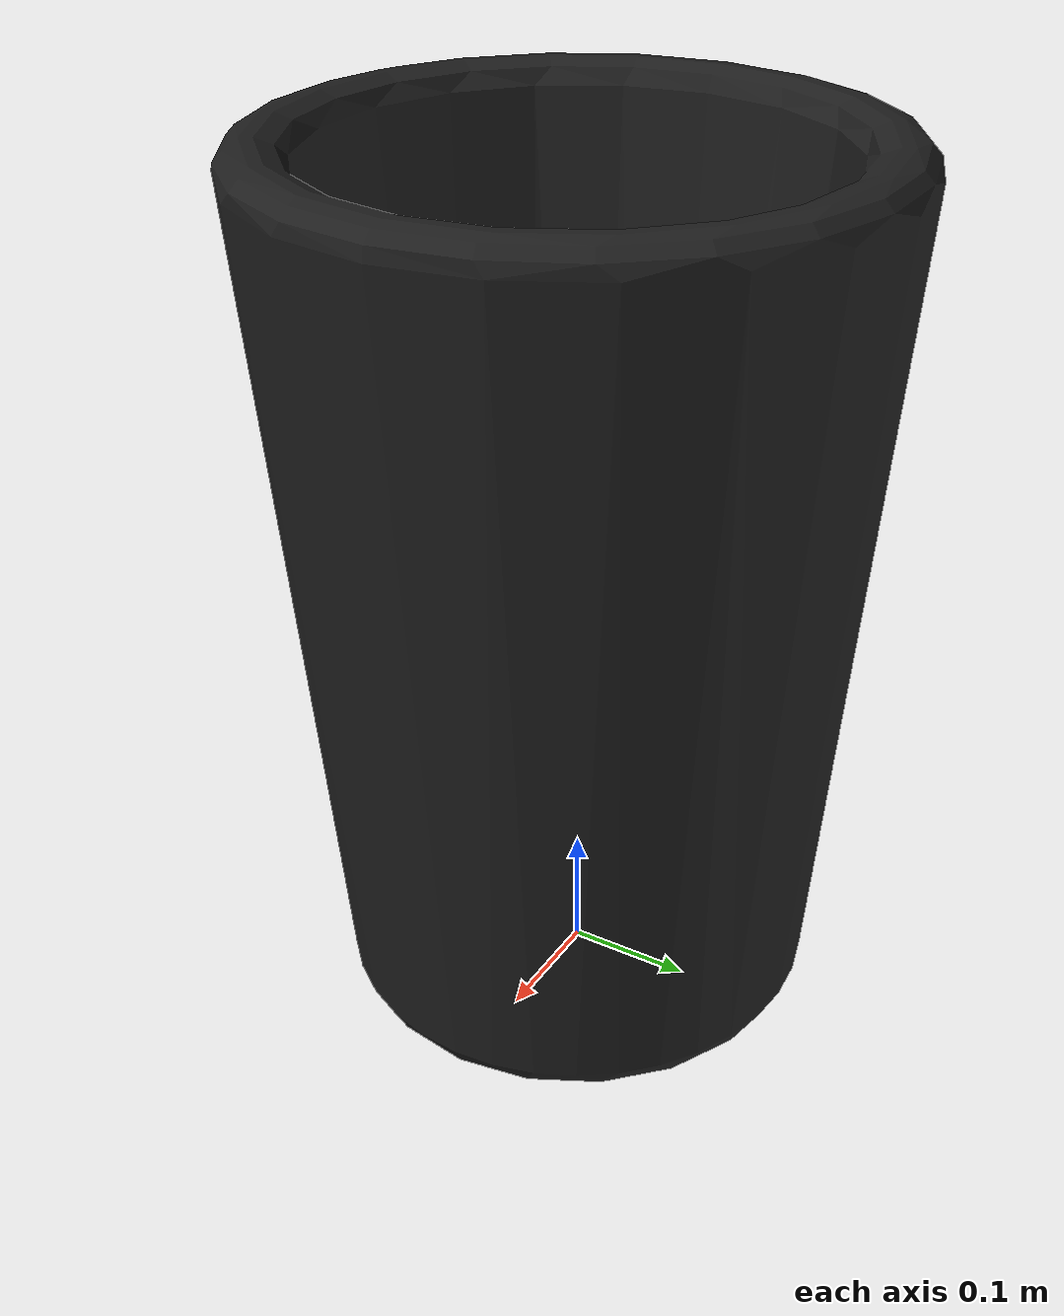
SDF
<?xml version="1.0" ?>
<sdf version="1.5">
  <model name="trash">
    <static>true</static>
    <link name='defaultModel_0::custom_0'>
      <pose>0 0 0 0 0 0</pose>
      <gravity>1</gravity>
      <self_collide>0</self_collide>
      <kinematic>0</kinematic>
      <visual name='custom_0_visual'>
        <pose>0 0 0 0 0 0</pose>
        <geometry>
          <mesh>
            <uri>model://trash/trash.dae</uri>
            <scale>0.01 0.01 0.01</scale>
          </mesh>
        </geometry>
        <material>
          <script>
            <uri>file://media/materials/scripts/gazebo.material</uri>
            <name>Gazebo/Black</name>
          </script>
        </material>
      </visual>
      <collision name='defaultModel_0::custom_0_collision'>
        <geometry>
          <mesh>
            <uri>model://trash/trash.dae</uri>
            <scale>0.01 0.01 0.01</scale>
          </mesh>
        </geometry>
        <pose>0 0 0 0 0 0</pose>
      </collision>
    </link>
  </model>
</sdf>
